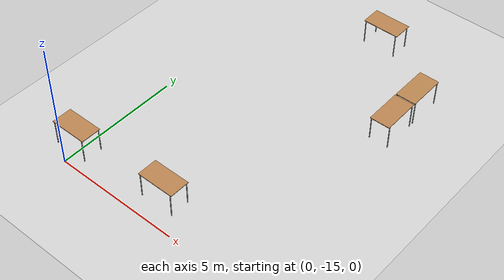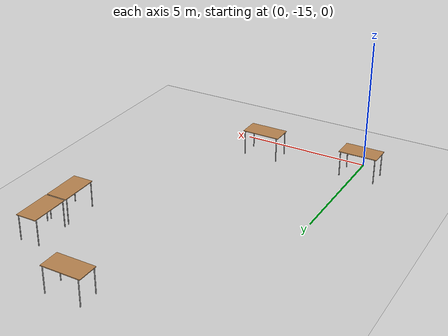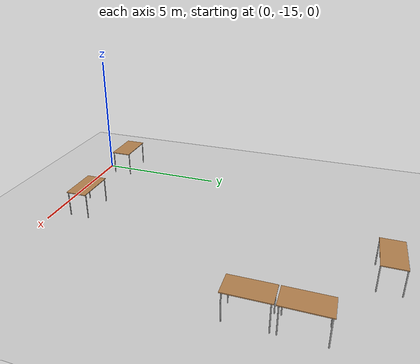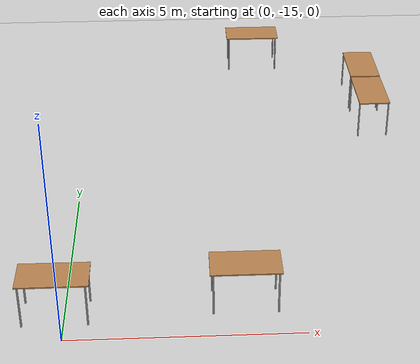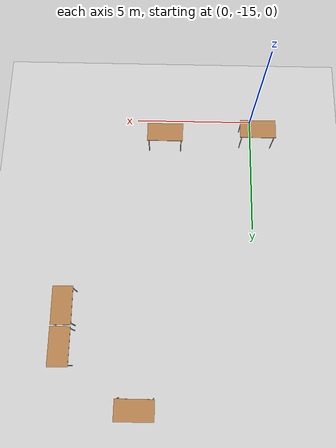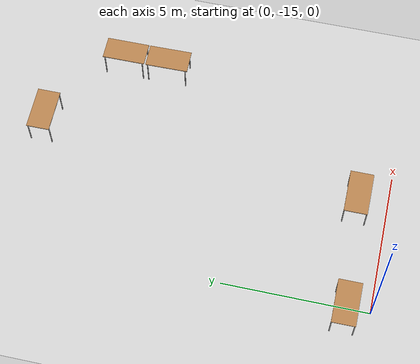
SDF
<sdf version="1.6">
 <world name="default">
  <model name="ground_plane">
   <static>1</static>
   <link name="link">
    <collision name="collision">
     <geometry><plane><normal>0 0 1</normal><size>100 100</size></plane></geometry>
     <surface><friction><ode><mu>100</mu><mu2>50</mu2></ode></friction></surface>
    </collision>
    <visual name="visual">
     <cast_shadows>0</cast_shadows>
     <geometry><plane><normal>0 0 1</normal><size>100 100</size></plane></geometry>
     <material>
      <script><uri>file://media/materials/scripts/gazebo.material</uri><name>Gazebo/Grey</name></script>
     </material>
    </visual>
   </link>
  </model>
  <model name="table">
   <static>1</static>
   <link name="link">
    <collision name="surface">
     <pose>0 0 1 0 -0 0</pose>
     <geometry><box><size>1.5 0.8 0.03</size></box></geometry>
     <surface><friction><ode><mu>0.6</mu><mu2>0.6</mu2></ode></friction></surface>
    </collision>
    <visual name="visual1">
     <pose>0 0 1 0 -0 0</pose>
     <geometry><box><size>1.5 0.8 0.03</size></box></geometry>
     <material>
      <script><uri>file://media/materials/scripts/gazebo.material</uri><name>Gazebo/Wood</name></script>
     </material>
    </visual>
    <collision name="front_left_leg">
     <pose>0.68 0.38 0.5 0 -0 0</pose>
     <geometry><cylinder><radius>0.02</radius><length>1</length></cylinder></geometry>
    </collision>
    <visual name="front_left_leg">
     <pose>0.68 0.38 0.5 0 -0 0</pose>
     <geometry><cylinder><radius>0.02</radius><length>1</length></cylinder></geometry>
     <material>
      <script><uri>file://media/materials/scripts/gazebo.material</uri><name>Gazebo/Grey</name></script>
     </material>
    </visual>
    <collision name="front_right_leg">
     <pose>0.68 -0.38 0.5 0 -0 0</pose>
     <geometry><cylinder><radius>0.02</radius><length>1</length></cylinder></geometry>
    </collision>
    <visual name="front_right_leg">
     <pose>0.68 -0.38 0.5 0 -0 0</pose>
     <geometry><cylinder><radius>0.02</radius><length>1</length></cylinder></geometry>
     <material>
      <script><uri>file://media/materials/scripts/gazebo.material</uri><name>Gazebo/Grey</name></script>
     </material>
    </visual>
    <collision name="back_right_leg">
     <pose>-0.68 -0.38 0.5 0 -0 0</pose>
     <geometry><cylinder><radius>0.02</radius><length>1</length></cylinder></geometry>
    </collision>
    <visual name="back_right_leg">
     <pose>-0.68 -0.38 0.5 0 -0 0</pose>
     <geometry><cylinder><radius>0.02</radius><length>1</length></cylinder></geometry>
     <material>
      <script><uri>file://media/materials/scripts/gazebo.material</uri><name>Gazebo/Grey</name></script>
     </material>
    </visual>
    <collision name="back_left_leg">
     <pose>-0.68 0.38 0.5 0 -0 0</pose>
     <geometry><cylinder><radius>0.02</radius><length>1</length></cylinder></geometry>
    </collision>
    <visual name="back_left_leg">
     <pose>-0.68 0.38 0.5 0 -0 0</pose>
     <geometry><cylinder><radius>0.02</radius><length>1</length></cylinder></geometry>
     <material>
      <script><uri>file://media/materials/scripts/gazebo.material</uri><name>Gazebo/Grey</name></script>
     </material>
    </visual>
   </link>
   <pose>4.64435 -2.73396 0 0 -0 0</pose>
  </model>
  <model name="table_0">
   <static>1</static>
   <link name="link">
    <collision name="surface">
     <pose>0 0 1 0 -0 0</pose>
     <geometry><box><size>1.5 0.8 0.03</size></box></geometry>
     <surface><friction><ode><mu>0.6</mu><mu2>0.6</mu2></ode></friction></surface>
    </collision>
    <visual name="visual1">
     <pose>0 0 1 0 -0 0</pose>
     <geometry><box><size>1.5 0.8 0.03</size></box></geometry>
     <material>
      <script><uri>file://media/materials/scripts/gazebo.material</uri><name>Gazebo/Wood</name></script>
     </material>
    </visual>
    <collision name="front_left_leg">
     <pose>0.68 0.38 0.5 0 -0 0</pose>
     <geometry><cylinder><radius>0.02</radius><length>1</length></cylinder></geometry>
    </collision>
    <visual name="front_left_leg">
     <pose>0.68 0.38 0.5 0 -0 0</pose>
     <geometry><cylinder><radius>0.02</radius><length>1</length></cylinder></geometry>
     <material>
      <script><uri>file://media/materials/scripts/gazebo.material</uri><name>Gazebo/Grey</name></script>
     </material>
    </visual>
    <collision name="front_right_leg">
     <pose>0.68 -0.38 0.5 0 -0 0</pose>
     <geometry><cylinder><radius>0.02</radius><length>1</length></cylinder></geometry>
    </collision>
    <visual name="front_right_leg">
     <pose>0.68 -0.38 0.5 0 -0 0</pose>
     <geometry><cylinder><radius>0.02</radius><length>1</length></cylinder></geometry>
     <material>
      <script><uri>file://media/materials/scripts/gazebo.material</uri><name>Gazebo/Grey</name></script>
     </material>
    </visual>
    <collision name="back_right_leg">
     <pose>-0.68 -0.38 0.5 0 -0 0</pose>
     <geometry><cylinder><radius>0.02</radius><length>1</length></cylinder></geometry>
    </collision>
    <visual name="back_right_leg">
     <pose>-0.68 -0.38 0.5 0 -0 0</pose>
     <geometry><cylinder><radius>0.02</radius><length>1</length></cylinder></geometry>
     <material>
      <script><uri>file://media/materials/scripts/gazebo.material</uri><name>Gazebo/Grey</name></script>
     </material>
    </visual>
    <collision name="back_left_leg">
     <pose>-0.68 0.38 0.5 0 -0 0</pose>
     <geometry><cylinder><radius>0.02</radius><length>1</length></cylinder></geometry>
    </collision>
    <visual name="back_left_leg">
     <pose>-0.68 0.38 0.5 0 -0 0</pose>
     <geometry><cylinder><radius>0.02</radius><length>1</length></cylinder></geometry>
     <material>
      <script><uri>file://media/materials/scripts/gazebo.material</uri><name>Gazebo/Grey</name></script>
     </material>
    </visual>
   </link>
   <pose>-0.172368 -14.1567 0 0 -0 0</pose>
  </model>
  <model name="table_1">
   <static>1</static>
   <link name="link">
    <collision name="surface">
     <pose>0 0 1 0 -0 0</pose>
     <geometry><box><size>1.5 0.8 0.03</size></box></geometry>
     <surface><friction><ode><mu>0.6</mu><mu2>0.6</mu2></ode></friction></surface>
    </collision>
    <visual name="visual1">
     <pose>0 0 1 0 -0 0</pose>
     <geometry><box><size>1.5 0.8 0.03</size></box></geometry>
     <material>
      <script><uri>file://media/materials/scripts/gazebo.material</uri><name>Gazebo/Wood</name></script>
     </material>
    </visual>
    <collision name="front_left_leg">
     <pose>0.68 0.38 0.5 0 -0 0</pose>
     <geometry><cylinder><radius>0.02</radius><length>1</length></cylinder></geometry>
    </collision>
    <visual name="front_left_leg">
     <pose>0.68 0.38 0.5 0 -0 0</pose>
     <geometry><cylinder><radius>0.02</radius><length>1</length></cylinder></geometry>
     <material>
      <script><uri>file://media/materials/scripts/gazebo.material</uri><name>Gazebo/Grey</name></script>
     </material>
    </visual>
    <collision name="front_right_leg">
     <pose>0.68 -0.38 0.5 0 -0 0</pose>
     <geometry><cylinder><radius>0.02</radius><length>1</length></cylinder></geometry>
    </collision>
    <visual name="front_right_leg">
     <pose>0.68 -0.38 0.5 0 -0 0</pose>
     <geometry><cylinder><radius>0.02</radius><length>1</length></cylinder></geometry>
     <material>
      <script><uri>file://media/materials/scripts/gazebo.material</uri><name>Gazebo/Grey</name></script>
     </material>
    </visual>
    <collision name="back_right_leg">
     <pose>-0.68 -0.38 0.5 0 -0 0</pose>
     <geometry><cylinder><radius>0.02</radius><length>1</length></cylinder></geometry>
    </collision>
    <visual name="back_right_leg">
     <pose>-0.68 -0.38 0.5 0 -0 0</pose>
     <geometry><cylinder><radius>0.02</radius><length>1</length></cylinder></geometry>
     <material>
      <script><uri>file://media/materials/scripts/gazebo.material</uri><name>Gazebo/Grey</name></script>
     </material>
    </visual>
    <collision name="back_left_leg">
     <pose>-0.68 0.38 0.5 0 -0 0</pose>
     <geometry><cylinder><radius>0.02</radius><length>1</length></cylinder></geometry>
    </collision>
    <visual name="back_left_leg">
     <pose>-0.68 0.38 0.5 0 -0 0</pose>
     <geometry><cylinder><radius>0.02</radius><length>1</length></cylinder></geometry>
     <material>
      <script><uri>file://media/materials/scripts/gazebo.material</uri><name>Gazebo/Grey</name></script>
     </material>
    </visual>
   </link>
   <pose>3.76322 -13.9334 0 0 -0 0</pose>
  </model>
  <model name="table_2">
   <static>1</static>
   <link name="link">
    <collision name="surface">
     <pose>0 0 1 0 -0 0</pose>
     <geometry><box><size>1.5 0.8 0.03</size></box></geometry>
     <surface><friction><ode><mu>0.6</mu><mu2>0.6</mu2></ode></friction></surface>
    </collision>
    <visual name="visual1">
     <pose>0 0 1 0 -0 0</pose>
     <geometry><box><size>1.5 0.8 0.03</size></box></geometry>
     <material>
      <script><uri>file://media/materials/scripts/gazebo.material</uri><name>Gazebo/Wood</name></script>
     </material>
    </visual>
    <collision name="front_left_leg">
     <pose>0.68 0.38 0.5 0 -0 0</pose>
     <geometry><cylinder><radius>0.02</radius><length>1</length></cylinder></geometry>
    </collision>
    <visual name="front_left_leg">
     <pose>0.68 0.38 0.5 0 -0 0</pose>
     <geometry><cylinder><radius>0.02</radius><length>1</length></cylinder></geometry>
     <material>
      <script><uri>file://media/materials/scripts/gazebo.material</uri><name>Gazebo/Grey</name></script>
     </material>
    </visual>
    <collision name="front_right_leg">
     <pose>0.68 -0.38 0.5 0 -0 0</pose>
     <geometry><cylinder><radius>0.02</radius><length>1</length></cylinder></geometry>
    </collision>
    <visual name="front_right_leg">
     <pose>0.68 -0.38 0.5 0 -0 0</pose>
     <geometry><cylinder><radius>0.02</radius><length>1</length></cylinder></geometry>
     <material>
      <script><uri>file://media/materials/scripts/gazebo.material</uri><name>Gazebo/Grey</name></script>
     </material>
    </visual>
    <collision name="back_right_leg">
     <pose>-0.68 -0.38 0.5 0 -0 0</pose>
     <geometry><cylinder><radius>0.02</radius><length>1</length></cylinder></geometry>
    </collision>
    <visual name="back_right_leg">
     <pose>-0.68 -0.38 0.5 0 -0 0</pose>
     <geometry><cylinder><radius>0.02</radius><length>1</length></cylinder></geometry>
     <material>
      <script><uri>file://media/materials/scripts/gazebo.material</uri><name>Gazebo/Grey</name></script>
     </material>
    </visual>
    <collision name="back_left_leg">
     <pose>-0.68 0.38 0.5 0 -0 0</pose>
     <geometry><cylinder><radius>0.02</radius><length>1</length></cylinder></geometry>
    </collision>
    <visual name="back_left_leg">
     <pose>-0.68 0.38 0.5 0 -0 0</pose>
     <geometry><cylinder><radius>0.02</radius><length>1</length></cylinder></geometry>
     <material>
      <script><uri>file://media/materials/scripts/gazebo.material</uri><name>Gazebo/Grey</name></script>
     </material>
    </visual>
   </link>
   <pose>7.56546 -4.95151 0 0.004408 -6e-06 1.57227</pose>
  </model>
  <model name="table_3">
   <static>1</static>
   <link name="link">
    <collision name="surface">
     <pose>0 0 1 0 -0 0</pose>
     <geometry><box><size>1.5 0.8 0.03</size></box></geometry>
     <surface><friction><ode><mu>0.6</mu><mu2>0.6</mu2></ode></friction></surface>
    </collision>
    <visual name="visual1">
     <pose>0 0 1 0 -0 0</pose>
     <geometry><box><size>1.5 0.8 0.03</size></box></geometry>
     <material>
      <script><uri>file://media/materials/scripts/gazebo.material</uri><name>Gazebo/Wood</name></script>
     </material>
    </visual>
    <collision name="front_left_leg">
     <pose>0.68 0.38 0.5 0 -0 0</pose>
     <geometry><cylinder><radius>0.02</radius><length>1</length></cylinder></geometry>
    </collision>
    <visual name="front_left_leg">
     <pose>0.68 0.38 0.5 0 -0 0</pose>
     <geometry><cylinder><radius>0.02</radius><length>1</length></cylinder></geometry>
     <material>
      <script><uri>file://media/materials/scripts/gazebo.material</uri><name>Gazebo/Grey</name></script>
     </material>
    </visual>
    <collision name="front_right_leg">
     <pose>0.68 -0.38 0.5 0 -0 0</pose>
     <geometry><cylinder><radius>0.02</radius><length>1</length></cylinder></geometry>
    </collision>
    <visual name="front_right_leg">
     <pose>0.68 -0.38 0.5 0 -0 0</pose>
     <geometry><cylinder><radius>0.02</radius><length>1</length></cylinder></geometry>
     <material>
      <script><uri>file://media/materials/scripts/gazebo.material</uri><name>Gazebo/Grey</name></script>
     </material>
    </visual>
    <collision name="back_right_leg">
     <pose>-0.68 -0.38 0.5 0 -0 0</pose>
     <geometry><cylinder><radius>0.02</radius><length>1</length></cylinder></geometry>
    </collision>
    <visual name="back_right_leg">
     <pose>-0.68 -0.38 0.5 0 -0 0</pose>
     <geometry><cylinder><radius>0.02</radius><length>1</length></cylinder></geometry>
     <material>
      <script><uri>file://media/materials/scripts/gazebo.material</uri><name>Gazebo/Grey</name></script>
     </material>
    </visual>
    <collision name="back_left_leg">
     <pose>-0.68 0.38 0.5 0 -0 0</pose>
     <geometry><cylinder><radius>0.02</radius><length>1</length></cylinder></geometry>
    </collision>
    <visual name="back_left_leg">
     <pose>-0.68 0.38 0.5 0 -0 0</pose>
     <geometry><cylinder><radius>0.02</radius><length>1</length></cylinder></geometry>
     <material>
      <script><uri>file://media/materials/scripts/gazebo.material</uri><name>Gazebo/Grey</name></script>
     </material>
    </visual>
   </link>
   <pose>7.57276 -6.50705 0 0 -0 1.58038</pose>
  </model>
 </world>
</sdf>
